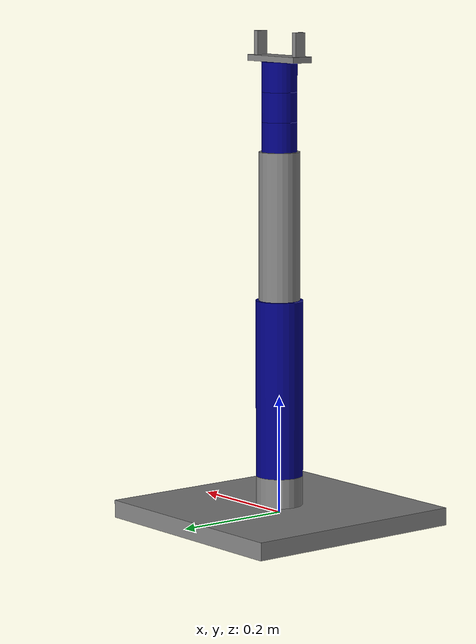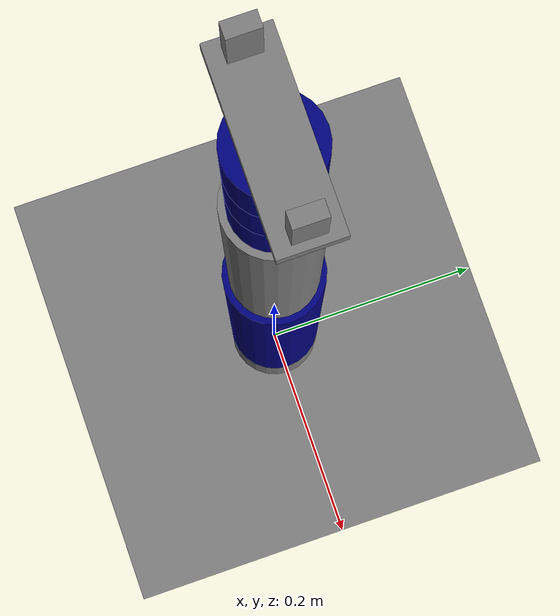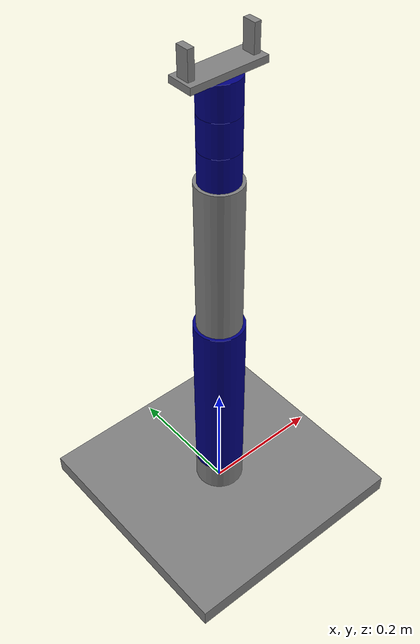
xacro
<?xml version="1.0"?>

<robot name="pap_arm" xmlns:xacro="http://www.ros.org/wiki/xacro">
    <xacro:include filename="$(find pap_arm)/urdf/common_properties.urdf.xacro"/>
    <xacro:include filename="$(find pap_arm)/urdf/pap_arm_links.xacro"/>
    <xacro:include filename="$(find pap_arm)/urdf/pap_arm_gazebo.xacro"/>
    <xacro:include filename="$(find pap_arm)/urdf/gripper.xacro"/>

    <joint name="end_effector_gripper" type="fixed">
        <origin xyz="0.0 0.0 ${gripper_base_height/2.0}" rpy="0.0 0.0 0.0"/>
        <parent link="end_effector"/>
        <child link="gripper_base"/>

    </joint>
</robot>

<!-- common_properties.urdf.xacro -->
<robot  xmlns:xacro="http://www.ros.org/wiki/xacro">

    <material name="green">
        <color rgba="0 0.5 0 1" />
    </material>

    <material name="red">
        <color rgba="0.5 0 0 1" />
    </material>

    <material name="orange">
        <color rgba="1 0.6 0 1" />
    </material>

    <material name="grey">
        <color rgba="0.5 0.5 0.5 1" />
    </material>

    <material name="blue">
        <color rgba="0 0 0.5 1" />
    </material>

    <xacro:macro name="box_inertia" params="m x y z o_xyz o_rpy" >
        <inertial>
            <mass value="${m}" />
            <origin xyz="${o_xyz}" rpy="${o_rpy}" />
            <inertia
                ixx="${(1/12.0)*m*(y**2 + z**2)}"  ixy="0.0"  ixz="0.0"
                iyy="${(1/12.0)*m*(x**2 + z**2)}"  iyz="0.0"
                izz="${(1/12.0)*m*(x**2 + y**2)}"
            />
        </inertial>
    </xacro:macro>

    <xacro:macro name="solid_cylinder_inertia" params="m r h o_xyz o_rpy" >
        <inertial>
            <mass value="${m}" />
            <origin xyz="${o_xyz}" rpy="${o_rpy}" />
            <inertia
                ixx="${(1/12.0)*m*(3*r**2 + h**2)}"  ixy="0.0"  ixz="0.0"
                iyy="${(1/12.0)*m*(3*r**2 + h**2)}"  iyz="0.0"
                izz="${(1/2.0)*m*(r**2)}"
            />
        </inertial>
    </xacro:macro>

    <xacro:macro name="solid_sphere_inertia" params="m r o_xyz o_rpy" >
        <inertial>
            <mass value="${m}" />
            <origin xyz="${o_xyz}" rpy="${o_rpy}" />
            <inertia
                ixx="${(2/5.0)*m*(r**2)}"  ixy="0.0"  ixz="0.0"
                iyy="${(2/5.0)*m*(r**2)}"  iyz="0.0"
                izz="${(2/5.0)*m*(r**2)}"
            />
        </inertial>
    </xacro:macro>
</robot>

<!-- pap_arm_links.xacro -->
<robot  xmlns:xacro="http://www.ros.org/wiki/xacro">
    <!-- XACRO definitions -->
    <xacro:property name="base_length" value="0.4"/>
    <xacro:property name="base_width" value="0.4"/>
    <xacro:property name="base_height" value="0.03"/>

    <xacro:property name="link1_length" value="0.05"/>
    <xacro:property name="link1_radius" value="0.04"/>

    <xacro:property name="link2_length" value="0.3"/>
    <xacro:property name="link2_radius" value="0.04"/>

    <xacro:property name="link3_length" value="0.25"/>
    <xacro:property name="link3_radius" value="0.035"/>

    <xacro:property name="link4_length" value="0.05"/>
    <xacro:property name="link4_radius" value="0.03"/>

    <xacro:property name="link5_length" value="0.05"/>
    <xacro:property name="link5_radius" value="0.03"/>

    <xacro:property name="link6_length" value="0.05"/>
    <xacro:property name="link6_radius" value="0.03"/>

    <xacro:property name="end_effector_radius" value="0.02"/>

    <!-- LINKS -->

    <link name="base_link">
        <visual>
            <geometry>
                <box size="${base_length} ${base_width} ${base_height}"/>
            </geometry>
            <origin xyz="0 0 0" rpy="0 0 0"/>
            <material name="grey"/>
        </visual>
        <xacro:box_inertia m="3.0" x="${base_length}" y="${base_width}" z="${base_height}" o_xyz="0 0 0" o_rpy="0 0 0"/>
        <collision>
            <geometry>
                <box size="${base_length} ${base_width} ${base_height}"/>
            </geometry>
            <origin xyz="0 0 0" rpy="0 0 0"/>
        </collision>
    </link>

    <xacro:macro name="cylindrical_link" params="name length radius mass color">
        <link name="${name}">
            <visual>
                <geometry>
                    <cylinder length="${length}" radius="${radius}"/>
                </geometry>
                <origin xyz="0 0 ${length/2}" rpy="0 0 0"/>
                <material name="${color}"/>
            </visual>
            <xacro:box_inertia m="${mass}" x="${radius*2.0}" y="${radius*2.0}" z="${length}" o_xyz="0 0 ${length/2}" o_rpy="0 0 0"/>
            <collision>
                <geometry>
                    <box size="${radius*2} ${radius*2} ${length}"/>
                </geometry>
                <origin xyz="0 0 ${length/2}" rpy="0 0 0"/>
            </collision>
        </link>
    </xacro:macro>

    <xacro:cylindrical_link name="link1" length="${link1_length}" radius="${link1_radius}" mass="1.5" color="grey"/>
    <xacro:cylindrical_link name="link2" length="${link2_length}" radius="${link2_radius}" mass="1.0" color="blue"/>
    <xacro:cylindrical_link name="link3" length="${link3_length}" radius="${link3_radius}" mass="0.8" color="grey"/>
    <xacro:cylindrical_link name="link4" length="${link4_length}" radius="${link4_radius}" mass="0.6" color="blue"/>
    <xacro:cylindrical_link name="link5" length="${link5_length}" radius="${link5_radius}" mass="0.4" color="blue"/>
    <xacro:cylindrical_link name="link6" length="${link6_length}" radius="${link6_radius}" mass="0.2" color="blue"/>

    <link name="end_effector">

    </link>

    <!-- JOINTS -->

    <joint name="base_link_link1" type="revolute">
        <parent link="base_link"/>
        <child link="link1"/>
        <origin xyz="0 0 ${base_height/2.0}" rpy="0 0 0"/>
        <axis xyz="0 0 1"/>
        <limit lower="-3.14" upper="3.14" effort="10.0" velocity="1.0"/>
    </joint>

    <joint name="link1_link2" type="revolute">
        <parent link="link1"/>
        <child link="link2"/>
        <origin xyz="0 0 ${link1_length}" rpy="0 0 0"/>
        <axis xyz="0 1 0"/>
        <limit lower="-1.57" upper="1.57" effort="10.0" velocity="1.0"/>
    </joint>

    <joint name="link2_link3" type="revolute">
        <parent link="link2"/>
        <child link="link3"/>
        <origin xyz="0 0 ${link2_length}" rpy="0 0 0"/>
        <axis xyz="0 1 0"/>
        <limit lower="-2.62" upper="2.62" effort="10.0" velocity="1.0"/>
    </joint>

    <joint name="link3_link4" type="revolute">
        <parent link="link3"/>
        <child link="link4"/>
        <origin xyz="0 0 ${link3_length}" rpy="0 0 0"/>
        <axis xyz="0 0 1"/>
        <limit lower="-3.14" upper="3.14" effort="10.0" velocity="1.0"/>
    </joint>

    <joint name="link4_link5" type="revolute">
        <parent link="link4"/>
        <child link="link5"/>
        <origin xyz="0 0 ${link4_length}" rpy="0 0 0"/>
        <axis xyz="0 1 0"/>
        <limit lower="-2.35" upper="2.35" effort="10.0" velocity="1.0"/>
    </joint>

    <joint name="link5_link6" type="revolute">
        <parent link="link5"/>
        <child link="link6"/>
        <origin xyz="0 0 ${link5_length}" rpy="0 0 0"/>
        <axis xyz="1 0 0"/>
        <limit lower="-3.14" upper="3.14" effort="10.0" velocity="1.0"/>
    </joint>

    <joint name="link6_end_effector" type="continuous">
        <parent link="link6"/>
        <child link="end_effector"/>
        <origin xyz="0 0 ${link6_length}" rpy="0 0 0"/>
        <axis xyz="0 0 1"/>
    </joint>

</robot>

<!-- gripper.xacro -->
<robot  xmlns:xacro="http://www.ros.org/wiki/xacro">
    <!-- XACRO definitions -->
    <xacro:property name="gripper_base_length" value="0.12"/>
    <xacro:property name="gripper_base_width" value="0.04"/>
    <xacro:property name="gripper_base_height" value="0.01"/>

    <xacro:property name="gripper_finger_length" value="0.01"/>
    <xacro:property name="gripper_finger_width" value="0.02"/>
    <xacro:property name="gripper_finger_height" value="0.04"/>

    <xacro:property name="gripper_finger_offset" value="0.05"/>

    <xacro:macro name="gripper_finger" params="name">

        <link name="${name}_gripper_finger">
            <visual>
                <origin xyz="0.0 0.0 ${gripper_finger_height/2.0}" rpy="0.0 0.0 0.0"/>
                <geometry>
                    <box size="${gripper_finger_length} ${gripper_finger_width} ${gripper_finger_height}"/>
                </geometry>
                <material name="grey"/>

            </visual>
            <collision>
                <origin xyz="0.0 0.0 ${gripper_finger_height/2.0}" rpy="0.0 0.0 0.0"/>
                <geometry>
                    <box size="${gripper_finger_length} ${gripper_finger_width} ${gripper_finger_height}"/>
                </geometry>
            </collision>
            <xacro:box_inertia m="3.0" x="0.02" y="0.02" z="0.04" o_xyz="0 0 0" o_rpy="0 0 0"/>

        </link>
    </xacro:macro>

    <link name="gripper_base">
        <xacro:box_inertia m="3.0" x="${gripper_base_length}" y="${gripper_base_width}" z="${gripper_base_height}" o_xyz="0 0 0" o_rpy="0 0 0"/>
        <visual name="">
            <origin xyz="0.0 0.0 0.0" rpy="0.0 0.0 0.0"/>
            <geometry>
                <box size="${gripper_base_length} ${gripper_base_width} ${gripper_base_height}"/>
            </geometry>
            <material name="grey"/>
        </visual>
        <collision>
            <origin xyz="0.0 0.0 0.0" rpy="0.0 0.0 0.0"/>
            <geometry>
                <box size="${gripper_base_length} ${gripper_base_width} ${gripper_base_height}"/>
            </geometry>
        </collision>
    </link>

    <xacro:gripper_finger name="left"/>
    <xacro:gripper_finger name="right"/>

    <joint name="gripper_base_left_finger" type="prismatic">
        <origin xyz="-${gripper_finger_offset} 0.0 ${gripper_base_height/2.0}" rpy="0.0 0.0 0.0"/>
        <parent link="gripper_base"/>
        <child link="left_gripper_finger"/>
        <axis xyz="1.0 0.0 0.0"/>
        <limit lower="0.0" upper="0.045" effort="0.0" velocity="0.0"/>

    </joint>

    <joint name="gripper_base_right_finger" type="prismatic">
        <origin xyz="${gripper_finger_offset} 0.0 ${gripper_base_height/2.0}" rpy="0.0 0.0 0.0"/>
        <parent link="gripper_base"/>
        <child link="right_gripper_finger"/>
        <axis xyz="1.0 0.0 0.0"/>
        <limit lower="0.0" upper="-0.045" effort="0.0" velocity="0.0"/>
        <mimic joint="gripper_base_left_finger" multiplier="-1.0"/>

    </joint>

</robot>
